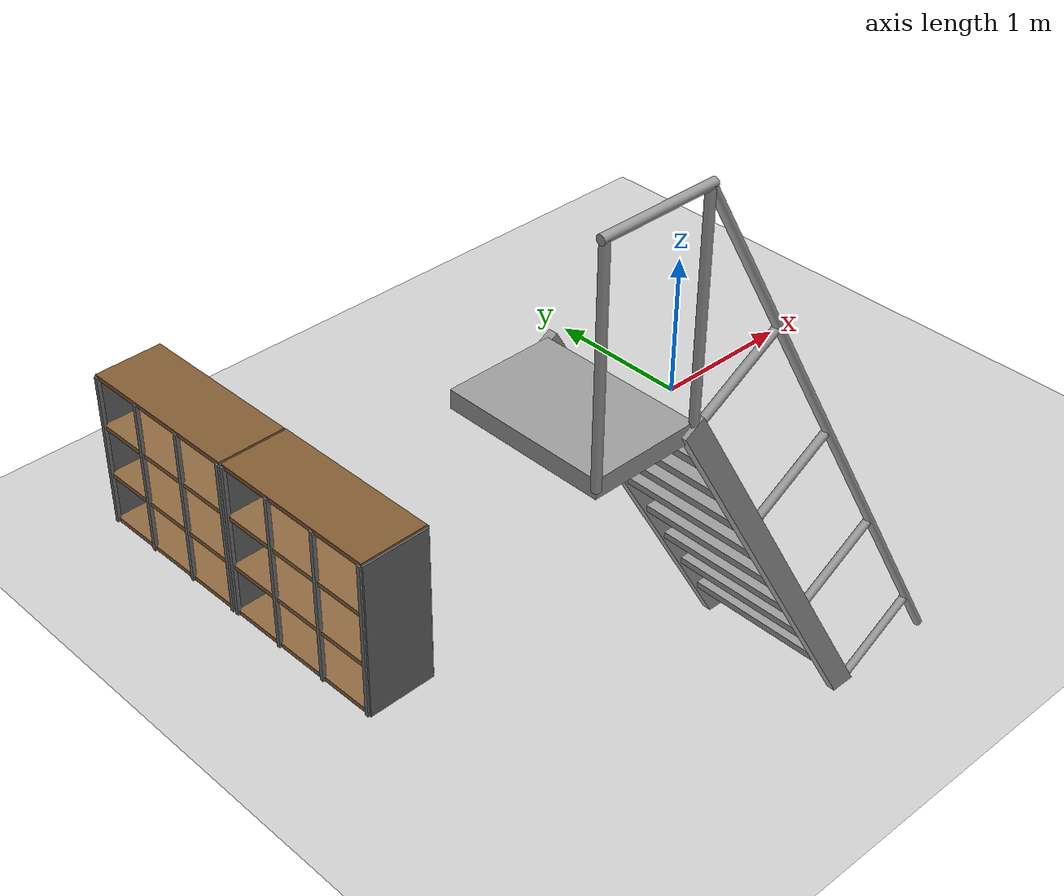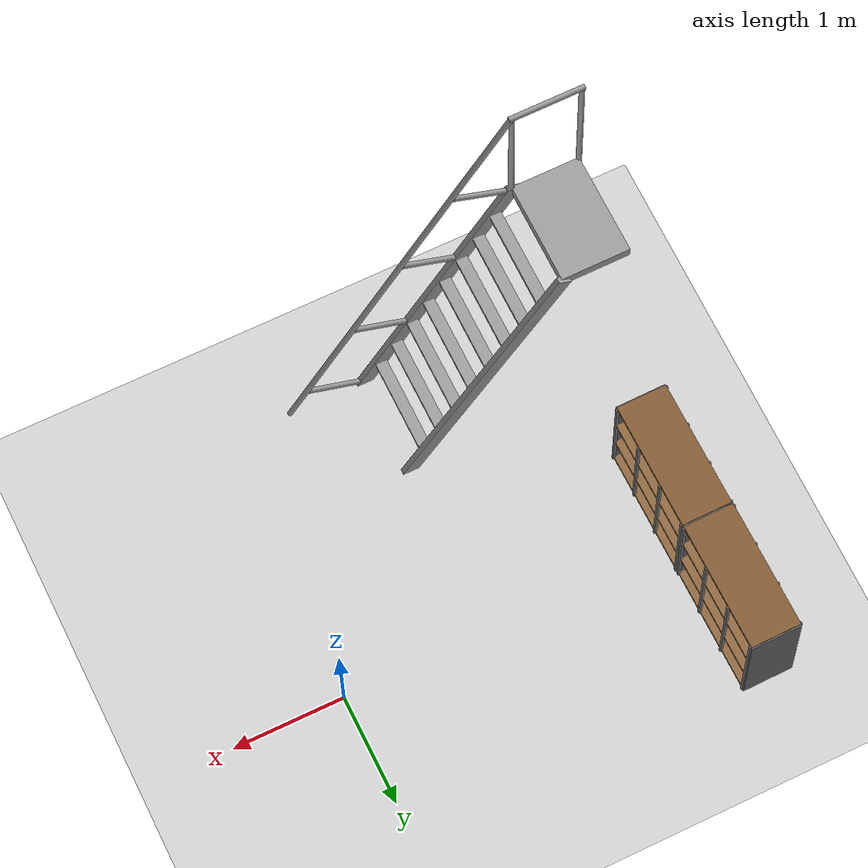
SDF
<sdf version="1.7">
 <world name="warehouse">
  <physics type="ode">
   <max_step_size>0.001</max_step_size>
   <real_time_factor>1</real_time_factor>
   <real_time_update_rate>1000</real_time_update_rate>
  </physics>
  <scene><ambient>0.5 0.5 0.5 1</ambient><background>0.7 0.7 0.7 1</background><shadows>1</shadows></scene>
  <light name="sun" type="directional">
   <pose>0 0 10 0 -0 0</pose>
   <diffuse>0.8 0.8 0.8 1</diffuse>
   <specular>0.2 0.2 0.2 1</specular>
   <attenuation>
    <range>1000</range>
    <constant>0.9</constant>
    <linear>0.01</linear>
    <quadratic>0.001</quadratic>
   </attenuation>
   <direction>-0.5 0.1 -0.9</direction>
   <spot><inner_angle>0</inner_angle><outer_angle>0</outer_angle><falloff>0</falloff></spot>
  </light>
  <model name="ground_plane">
   <static>1</static>
   <link name="link">
    <collision name="collision">
     <geometry><plane><normal>0 0 1</normal><size>100 100</size></plane></geometry>
     <surface><friction><ode><mu>100</mu><mu2>100</mu2></ode></friction></surface>
    </collision>
    <visual name="visual">
     <geometry><plane><normal>0 0 1</normal><size>100 100</size></plane></geometry>
     <material>
      <ambient>0.8 0.8 0.8 1</ambient>
      <diffuse>0.8 0.8 0.8 1</diffuse>
      <specular>0.1 0.1 0.1 1</specular>
     </material>
    </visual>
   </link>
  </model>
  <gravity>0 0 -9.8</gravity>
  <magnetic_field>6e-06 2.3e-05 -4.2e-05</magnetic_field>
  <atmosphere type="adiabatic"/>
  <audio><device>default</device></audio>
  <spherical_coordinates>
   <surface_model>EARTH_WGS84</surface_model>
   <latitude_deg>0</latitude_deg>
   <longitude_deg>0</longitude_deg>
   <elevation>0</elevation>
   <heading_deg>0</heading_deg>
  </spherical_coordinates>
  <model name="box_storage_3x3_clone_clone">
   <static>1</static>
   <link name="post_1">
    <pose>-0.5625 -0.225 0.525 0 -0 0</pose>
    <inertial><mass>0.3</mass></inertial>
    <collision name="post_1_col"><geometry><box><size>0.025 0.025 1.05</size></box></geometry></collision>
    <visual name="post_1_vis">
     <geometry><box><size>0.025 0.025 1.05</size></box></geometry>
     <material><ambient>0.45 0.45 0.45 1</ambient><diffuse>0.45 0.45 0.45 1</diffuse></material>
    </visual>
   </link>
   <link name="post_2">
    <pose>-0.1875 -0.225 0.525 0 -0 0</pose>
    <inertial><mass>0.3</mass></inertial>
    <collision name="post_2_col"><geometry><box><size>0.025 0.025 1.05</size></box></geometry></collision>
    <visual name="post_2_vis">
     <geometry><box><size>0.025 0.025 1.05</size></box></geometry>
     <material><ambient>0.45 0.45 0.45 1</ambient><diffuse>0.45 0.45 0.45 1</diffuse></material>
    </visual>
   </link>
   <link name="post_3">
    <pose>0.1875 -0.225 0.525 0 -0 0</pose>
    <inertial><mass>0.3</mass></inertial>
    <collision name="post_3_col"><geometry><box><size>0.025 0.025 1.05</size></box></geometry></collision>
    <visual name="post_3_vis">
     <geometry><box><size>0.025 0.025 1.05</size></box></geometry>
     <material><ambient>0.45 0.45 0.45 1</ambient><diffuse>0.45 0.45 0.45 1</diffuse></material>
    </visual>
   </link>
   <link name="post_4">
    <pose>0.5625 -0.225 0.525 0 -0 0</pose>
    <inertial><mass>0.3</mass></inertial>
    <collision name="post_4_col"><geometry><box><size>0.025 0.025 1.05</size></box></geometry></collision>
    <visual name="post_4_vis">
     <geometry><box><size>0.025 0.025 1.05</size></box></geometry>
     <material><ambient>0.45 0.45 0.45 1</ambient><diffuse>0.45 0.45 0.45 1</diffuse></material>
    </visual>
   </link>
   <link name="post_5">
    <pose>-0.5625 0.225 0.525 0 -0 0</pose>
    <inertial><mass>0.3</mass></inertial>
    <collision name="post_5_col"><geometry><box><size>0.025 0.025 1.05</size></box></geometry></collision>
    <visual name="post_5_vis">
     <geometry><box><size>0.025 0.025 1.05</size></box></geometry>
     <material><ambient>0.45 0.45 0.45 1</ambient><diffuse>0.45 0.45 0.45 1</diffuse></material>
    </visual>
   </link>
   <link name="post_6">
    <pose>-0.1875 0.225 0.525 0 -0 0</pose>
    <inertial><mass>0.3</mass></inertial>
    <collision name="post_6_col"><geometry><box><size>0.025 0.025 1.05</size></box></geometry></collision>
    <visual name="post_6_vis">
     <geometry><box><size>0.025 0.025 1.05</size></box></geometry>
     <material><ambient>0.45 0.45 0.45 1</ambient><diffuse>0.45 0.45 0.45 1</diffuse></material>
    </visual>
   </link>
   <link name="post_7">
    <pose>0.1875 0.225 0.525 0 -0 0</pose>
    <inertial><mass>0.3</mass></inertial>
    <collision name="post_7_col"><geometry><box><size>0.025 0.025 1.05</size></box></geometry></collision>
    <visual name="post_7_vis">
     <geometry><box><size>0.025 0.025 1.05</size></box></geometry>
     <material><ambient>0.45 0.45 0.45 1</ambient><diffuse>0.45 0.45 0.45 1</diffuse></material>
    </visual>
   </link>
   <link name="post_8">
    <pose>0.5625 0.225 0.525 0 -0 0</pose>
    <inertial><mass>0.3</mass></inertial>
    <collision name="post_8_col"><geometry><box><size>0.025 0.025 1.05</size></box></geometry></collision>
    <visual name="post_8_vis">
     <geometry><box><size>0.025 0.025 1.05</size></box></geometry>
     <material><ambient>0.45 0.45 0.45 1</ambient><diffuse>0.45 0.45 0.45 1</diffuse></material>
    </visual>
   </link>
   <link name="bottom_floor">
    <pose>0 0 0.015 0 -0 0</pose>
    <inertial><mass>5</mass></inertial>
    <collision name="bottom_floor_col"><geometry><box><size>1.15 0.45 0.03</size></box></geometry></collision>
    <visual name="bottom_floor_vis">
     <geometry><box><size>1.15 0.45 0.03</size></box></geometry>
     <material><ambient>0.55 0.4 0.25 1</ambient><diffuse>0.55 0.4 0.25 1</diffuse></material>
    </visual>
   </link>
   <link name="floor_1">
    <pose>0 0 0.35 0 -0 0</pose>
    <inertial><mass>5</mass></inertial>
    <collision name="floor_1_col"><geometry><box><size>1.15 0.45 0.03</size></box></geometry></collision>
    <visual name="floor_1_vis">
     <geometry><box><size>1.15 0.45 0.03</size></box></geometry>
     <material><ambient>0.55 0.4 0.25 1</ambient><diffuse>0.55 0.4 0.25 1</diffuse></material>
    </visual>
   </link>
   <link name="floor_2">
    <pose>0 0 0.7 0 -0 0</pose>
    <inertial><mass>5</mass></inertial>
    <collision name="floor_2_col"><geometry><box><size>1.15 0.45 0.03</size></box></geometry></collision>
    <visual name="floor_2_vis">
     <geometry><box><size>1.15 0.45 0.03</size></box></geometry>
     <material><ambient>0.55 0.4 0.25 1</ambient><diffuse>0.55 0.4 0.25 1</diffuse></material>
    </visual>
   </link>
   <link name="top_floor">
    <pose>0 0 1.05 0 -0 0</pose>
    <inertial><mass>5</mass></inertial>
    <collision name="top_floor_col"><geometry><box><size>1.15 0.45 0.03</size></box></geometry></collision>
    <visual name="top_floor_vis">
     <geometry><box><size>1.15 0.45 0.03</size></box></geometry>
     <material><ambient>0.5 0.35 0.2 1</ambient><diffuse>0.5 0.35 0.2 1</diffuse></material>
    </visual>
   </link>
   <link name="side_wall_left">
    <pose>-0.575 0 0.525 0 -0 0</pose>
    <inertial><mass>2</mass></inertial>
    <collision name="side_wall_left_col"><geometry><box><size>0.025 0.45 1.05</size></box></geometry></collision>
    <visual name="side_wall_left_vis">
     <geometry><box><size>0.025 0.45 1.05</size></box></geometry>
     <material><ambient>0.4 0.4 0.4 1</ambient><diffuse>0.4 0.4 0.4 1</diffuse></material>
    </visual>
   </link>
   <link name="side_wall_right">
    <pose>0.575 0 0.525 0 -0 0</pose>
    <inertial><mass>2</mass></inertial>
    <collision name="side_wall_right_col"><geometry><box><size>0.025 0.45 1.05</size></box></geometry></collision>
    <visual name="side_wall_right_vis">
     <geometry><box><size>0.025 0.45 1.05</size></box></geometry>
     <material><ambient>0.4 0.4 0.4 1</ambient><diffuse>0.4 0.4 0.4 1</diffuse></material>
    </visual>
   </link>
   <pose>-3.18965 0.794587 0 0 -0 1.58377</pose>
  </model>
  <model name="box_storage_3x3_clone_clone_clone">
   <static>1</static>
   <link name="post_1">
    <pose>-0.5625 -0.225 0.525 0 -0 0</pose>
    <inertial><mass>0.3</mass></inertial>
    <collision name="post_1_col"><geometry><box><size>0.025 0.025 1.05</size></box></geometry></collision>
    <visual name="post_1_vis">
     <geometry><box><size>0.025 0.025 1.05</size></box></geometry>
     <material><ambient>0.45 0.45 0.45 1</ambient><diffuse>0.45 0.45 0.45 1</diffuse></material>
    </visual>
   </link>
   <link name="post_2">
    <pose>-0.1875 -0.225 0.525 0 -0 0</pose>
    <inertial><mass>0.3</mass></inertial>
    <collision name="post_2_col"><geometry><box><size>0.025 0.025 1.05</size></box></geometry></collision>
    <visual name="post_2_vis">
     <geometry><box><size>0.025 0.025 1.05</size></box></geometry>
     <material><ambient>0.45 0.45 0.45 1</ambient><diffuse>0.45 0.45 0.45 1</diffuse></material>
    </visual>
   </link>
   <link name="post_3">
    <pose>0.1875 -0.225 0.525 0 -0 0</pose>
    <inertial><mass>0.3</mass></inertial>
    <collision name="post_3_col"><geometry><box><size>0.025 0.025 1.05</size></box></geometry></collision>
    <visual name="post_3_vis">
     <geometry><box><size>0.025 0.025 1.05</size></box></geometry>
     <material><ambient>0.45 0.45 0.45 1</ambient><diffuse>0.45 0.45 0.45 1</diffuse></material>
    </visual>
   </link>
   <link name="post_4">
    <pose>0.5625 -0.225 0.525 0 -0 0</pose>
    <inertial><mass>0.3</mass></inertial>
    <collision name="post_4_col"><geometry><box><size>0.025 0.025 1.05</size></box></geometry></collision>
    <visual name="post_4_vis">
     <geometry><box><size>0.025 0.025 1.05</size></box></geometry>
     <material><ambient>0.45 0.45 0.45 1</ambient><diffuse>0.45 0.45 0.45 1</diffuse></material>
    </visual>
   </link>
   <link name="post_5">
    <pose>-0.5625 0.225 0.525 0 -0 0</pose>
    <inertial><mass>0.3</mass></inertial>
    <collision name="post_5_col"><geometry><box><size>0.025 0.025 1.05</size></box></geometry></collision>
    <visual name="post_5_vis">
     <geometry><box><size>0.025 0.025 1.05</size></box></geometry>
     <material><ambient>0.45 0.45 0.45 1</ambient><diffuse>0.45 0.45 0.45 1</diffuse></material>
    </visual>
   </link>
   <link name="post_6">
    <pose>-0.1875 0.225 0.525 0 -0 0</pose>
    <inertial><mass>0.3</mass></inertial>
    <collision name="post_6_col"><geometry><box><size>0.025 0.025 1.05</size></box></geometry></collision>
    <visual name="post_6_vis">
     <geometry><box><size>0.025 0.025 1.05</size></box></geometry>
     <material><ambient>0.45 0.45 0.45 1</ambient><diffuse>0.45 0.45 0.45 1</diffuse></material>
    </visual>
   </link>
   <link name="post_7">
    <pose>0.1875 0.225 0.525 0 -0 0</pose>
    <inertial><mass>0.3</mass></inertial>
    <collision name="post_7_col"><geometry><box><size>0.025 0.025 1.05</size></box></geometry></collision>
    <visual name="post_7_vis">
     <geometry><box><size>0.025 0.025 1.05</size></box></geometry>
     <material><ambient>0.45 0.45 0.45 1</ambient><diffuse>0.45 0.45 0.45 1</diffuse></material>
    </visual>
   </link>
   <link name="post_8">
    <pose>0.5625 0.225 0.525 0 -0 0</pose>
    <inertial><mass>0.3</mass></inertial>
    <collision name="post_8_col"><geometry><box><size>0.025 0.025 1.05</size></box></geometry></collision>
    <visual name="post_8_vis">
     <geometry><box><size>0.025 0.025 1.05</size></box></geometry>
     <material><ambient>0.45 0.45 0.45 1</ambient><diffuse>0.45 0.45 0.45 1</diffuse></material>
    </visual>
   </link>
   <link name="bottom_floor">
    <pose>0 0 0.015 0 -0 0</pose>
    <inertial><mass>5</mass></inertial>
    <collision name="bottom_floor_col"><geometry><box><size>1.15 0.45 0.03</size></box></geometry></collision>
    <visual name="bottom_floor_vis">
     <geometry><box><size>1.15 0.45 0.03</size></box></geometry>
     <material><ambient>0.55 0.4 0.25 1</ambient><diffuse>0.55 0.4 0.25 1</diffuse></material>
    </visual>
   </link>
   <link name="floor_1">
    <pose>0 0 0.35 0 -0 0</pose>
    <inertial><mass>5</mass></inertial>
    <collision name="floor_1_col"><geometry><box><size>1.15 0.45 0.03</size></box></geometry></collision>
    <visual name="floor_1_vis">
     <geometry><box><size>1.15 0.45 0.03</size></box></geometry>
     <material><ambient>0.55 0.4 0.25 1</ambient><diffuse>0.55 0.4 0.25 1</diffuse></material>
    </visual>
   </link>
   <link name="floor_2">
    <pose>0 0 0.7 0 -0 0</pose>
    <inertial><mass>5</mass></inertial>
    <collision name="floor_2_col"><geometry><box><size>1.15 0.45 0.03</size></box></geometry></collision>
    <visual name="floor_2_vis">
     <geometry><box><size>1.15 0.45 0.03</size></box></geometry>
     <material><ambient>0.55 0.4 0.25 1</ambient><diffuse>0.55 0.4 0.25 1</diffuse></material>
    </visual>
   </link>
   <link name="top_floor">
    <pose>0 0 1.05 0 -0 0</pose>
    <inertial><mass>5</mass></inertial>
    <collision name="top_floor_col"><geometry><box><size>1.15 0.45 0.03</size></box></geometry></collision>
    <visual name="top_floor_vis">
     <geometry><box><size>1.15 0.45 0.03</size></box></geometry>
     <material><ambient>0.5 0.35 0.2 1</ambient><diffuse>0.5 0.35 0.2 1</diffuse></material>
    </visual>
   </link>
   <link name="side_wall_left">
    <pose>-0.575 0 0.525 0 -0 0</pose>
    <inertial><mass>2</mass></inertial>
    <collision name="side_wall_left_col"><geometry><box><size>0.025 0.45 1.05</size></box></geometry></collision>
    <visual name="side_wall_left_vis">
     <geometry><box><size>0.025 0.45 1.05</size></box></geometry>
     <material><ambient>0.4 0.4 0.4 1</ambient><diffuse>0.4 0.4 0.4 1</diffuse></material>
    </visual>
   </link>
   <link name="side_wall_right">
    <pose>0.575 0 0.525 0 -0 0</pose>
    <inertial><mass>2</mass></inertial>
    <collision name="side_wall_right_col"><geometry><box><size>0.025 0.45 1.05</size></box></geometry></collision>
    <visual name="side_wall_right_vis">
     <geometry><box><size>0.025 0.45 1.05</size></box></geometry>
     <material><ambient>0.4 0.4 0.4 1</ambient><diffuse>0.4 0.4 0.4 1</diffuse></material>
    </visual>
   </link>
   <pose>-3.17224 -0.371307 0 0 -0 1.58377</pose>
  </model>
  <model name="ladder_60deg_1rails">
   <static>1</static>
   <link name="step0">
    <pose>0 0.15396 0.266667 0 -0 0</pose>
    <inertial>
     <mass>9.75482</mass>
     <inertia>
      <ixx>0.00957124</ixx>
      <iyy>0.65963</iyy>
      <izz>0.666842</izz>
      <ixy>0</ixy>
      <ixz>0</ixz>
      <iyz>0</iyz>
     </inertia>
    </inertial>
    <collision name="collision"><geometry><box><size>0.9 0.1016 0.0381</size></box></geometry></collision>
    <visual name="visual">
     <geometry><box><size>0.9 0.1016 0.0381</size></box></geometry>
     <material>
      <script><uri>file://media/materials/scripts/gazebo.material</uri><name>Gazebo/Grey</name></script>
     </material>
    </visual>
   </link>
   <link name="step1">
    <pose>0 0.30792 0.533333 0 -0 0</pose>
    <inertial>
     <mass>9.75482</mass>
     <inertia>
      <ixx>0.00957124</ixx>
      <iyy>0.65963</iyy>
      <izz>0.666842</izz>
      <ixy>0</ixy>
      <ixz>0</ixz>
      <iyz>0</iyz>
     </inertia>
    </inertial>
    <collision name="collision"><geometry><box><size>0.9 0.1016 0.0381</size></box></geometry></collision>
    <visual name="visual">
     <geometry><box><size>0.9 0.1016 0.0381</size></box></geometry>
     <material>
      <script><uri>file://media/materials/scripts/gazebo.material</uri><name>Gazebo/Grey</name></script>
     </material>
    </visual>
   </link>
   <link name="step2">
    <pose>0 0.46188 0.8 0 -0 0</pose>
    <inertial>
     <mass>9.75482</mass>
     <inertia>
      <ixx>0.00957124</ixx>
      <iyy>0.65963</iyy>
      <izz>0.666842</izz>
      <ixy>0</ixy>
      <ixz>0</ixz>
      <iyz>0</iyz>
     </inertia>
    </inertial>
    <collision name="collision"><geometry><box><size>0.9 0.1016 0.0381</size></box></geometry></collision>
    <visual name="visual">
     <geometry><box><size>0.9 0.1016 0.0381</size></box></geometry>
     <material>
      <script><uri>file://media/materials/scripts/gazebo.material</uri><name>Gazebo/Grey</name></script>
     </material>
    </visual>
   </link>
   <link name="step3">
    <pose>0 0.61584 1.06667 0 -0 0</pose>
    <inertial>
     <mass>9.75482</mass>
     <inertia>
      <ixx>0.00957124</ixx>
      <iyy>0.65963</iyy>
      <izz>0.666842</izz>
      <ixy>0</ixy>
      <ixz>0</ixz>
      <iyz>0</iyz>
     </inertia>
    </inertial>
    <collision name="collision"><geometry><box><size>0.9 0.1016 0.0381</size></box></geometry></collision>
    <visual name="visual">
     <geometry><box><size>0.9 0.1016 0.0381</size></box></geometry>
     <material>
      <script><uri>file://media/materials/scripts/gazebo.material</uri><name>Gazebo/Grey</name></script>
     </material>
    </visual>
   </link>
   <link name="step4">
    <pose>0 0.7698 1.33333 0 -0 0</pose>
    <inertial>
     <mass>9.75482</mass>
     <inertia>
      <ixx>0.00957124</ixx>
      <iyy>0.65963</iyy>
      <izz>0.666842</izz>
      <ixy>0</ixy>
      <ixz>0</ixz>
      <iyz>0</iyz>
     </inertia>
    </inertial>
    <collision name="collision"><geometry><box><size>0.9 0.1016 0.0381</size></box></geometry></collision>
    <visual name="visual">
     <geometry><box><size>0.9 0.1016 0.0381</size></box></geometry>
     <material>
      <script><uri>file://media/materials/scripts/gazebo.material</uri><name>Gazebo/Grey</name></script>
     </material>
    </visual>
   </link>
   <link name="step5">
    <pose>0 0.92376 1.6 0 -0 0</pose>
    <inertial>
     <mass>9.75482</mass>
     <inertia>
      <ixx>0.00957124</ixx>
      <iyy>0.65963</iyy>
      <izz>0.666842</izz>
      <ixy>0</ixy>
      <ixz>0</ixz>
      <iyz>0</iyz>
     </inertia>
    </inertial>
    <collision name="collision"><geometry><box><size>0.9 0.1016 0.0381</size></box></geometry></collision>
    <visual name="visual">
     <geometry><box><size>0.9 0.1016 0.0381</size></box></geometry>
     <material>
      <script><uri>file://media/materials/scripts/gazebo.material</uri><name>Gazebo/Grey</name></script>
     </material>
    </visual>
   </link>
   <link name="step6">
    <pose>0 1.07772 1.86667 0 -0 0</pose>
    <inertial>
     <mass>9.75482</mass>
     <inertia>
      <ixx>0.00957124</ixx>
      <iyy>0.65963</iyy>
      <izz>0.666842</izz>
      <ixy>0</ixy>
      <ixz>0</ixz>
      <iyz>0</iyz>
     </inertia>
    </inertial>
    <collision name="collision"><geometry><box><size>0.9 0.1016 0.0381</size></box></geometry></collision>
    <visual name="visual">
     <geometry><box><size>0.9 0.1016 0.0381</size></box></geometry>
     <material>
      <script><uri>file://media/materials/scripts/gazebo.material</uri><name>Gazebo/Grey</name></script>
     </material>
    </visual>
   </link>
   <link name="step7">
    <pose>0 1.23168 2.13333 0 -0 0</pose>
    <inertial>
     <mass>9.75482</mass>
     <inertia>
      <ixx>0.00957124</ixx>
      <iyy>0.65963</iyy>
      <izz>0.666842</izz>
      <ixy>0</ixy>
      <ixz>0</ixz>
      <iyz>0</iyz>
     </inertia>
    </inertial>
    <collision name="collision"><geometry><box><size>0.9 0.1016 0.0381</size></box></geometry></collision>
    <visual name="visual">
     <geometry><box><size>0.9 0.1016 0.0381</size></box></geometry>
     <material>
      <script><uri>file://media/materials/scripts/gazebo.material</uri><name>Gazebo/Grey</name></script>
     </material>
    </visual>
   </link>
   <link name="landing">
    <pose>0 1.68564 2.4 0 -0 0</pose>
    <inertial>
     <mass>57.6072</mass>
     <inertia><ixx>1.73518</ixx><iyy>3.89545</iyy><izz>5.6167</izz><ixy>0</ixy><ixz>0</ixz><iyz>0</iyz></inertia>
    </inertial>
    <collision name="collision"><geometry><box><size>0.9 0.6 0.1016</size></box></geometry></collision>
    <visual name="visual">
     <geometry><box><size>0.9 0.6 0.1016</size></box></geometry>
     <material>
      <script><uri>file://media/materials/scripts/gazebo.material</uri><name>Gazebo/Grey</name></script>
     </material>
    </visual>
   </link>
   <link name="left_side_wall">
    <pose>-0.45 0.69282 1.2 1.0472 -0 0</pose>
    <collision name="collision"><geometry><box><size>0.0508 2.85128 0.13</size></box></geometry></collision>
    <visual name="visual">
     <geometry><box><size>0.0508 2.85128 0.13</size></box></geometry>
     <material>
      <script><uri>file://media/materials/scripts/gazebo.material</uri><name>Gazebo/Grey</name></script>
     </material>
    </visual>
   </link>
   <link name="right_side_wall">
    <pose>0.45 0.69282 1.2 1.0472 -0 0</pose>
    <collision name="collision"><geometry><box><size>0.0508 2.85128 0.13</size></box></geometry></collision>
    <visual name="visual">
     <geometry><box><size>0.0508 2.85128 0.13</size></box></geometry>
     <material>
      <script><uri>file://media/materials/scripts/gazebo.material</uri><name>Gazebo/Grey</name></script>
     </material>
    </visual>
   </link>
   <link name="left_railing_long">
    <pose>-0.45 0.34282 1.80622 -0.523599 0 0</pose>
    <collision name="collision">
     <geometry><cylinder><radius>0.02413</radius><length>4.17128</length></cylinder></geometry>
    </collision>
    <visual name="visual">
     <geometry><cylinder><radius>0.02413</radius><length>4.17128</length></cylinder></geometry>
     <material>
      <script><uri>file://media/materials/scripts/gazebo.material</uri><name>Gazebo/Grey</name></script>
     </material>
    </visual>
   </link>
   <link name="left_railing_upright0">
    <pose>-0.45 -0.274963 0.15875 1.0472 -0 0</pose>
    <collision name="collision">
     <geometry><cylinder><radius>0.02413</radius><length>0.541218</length></cylinder></geometry>
    </collision>
    <visual name="visual">
     <geometry><cylinder><radius>0.02413</radius><length>0.541218</length></cylinder></geometry>
     <material>
      <script><uri>file://media/materials/scripts/gazebo.material</uri><name>Gazebo/Grey</name></script>
     </material>
    </visual>
   </link>
   <link name="left_railing_upright1">
    <pose>-0.45 0.186917 0.95875 1.0472 -0 0</pose>
    <collision name="collision">
     <geometry><cylinder><radius>0.02413</radius><length>0.541218</length></cylinder></geometry>
    </collision>
    <visual name="visual">
     <geometry><cylinder><radius>0.02413</radius><length>0.541218</length></cylinder></geometry>
     <material>
      <script><uri>file://media/materials/scripts/gazebo.material</uri><name>Gazebo/Grey</name></script>
     </material>
    </visual>
   </link>
   <link name="left_railing_upright2">
    <pose>-0.45 0.648797 1.75875 1.0472 -0 0</pose>
    <collision name="collision">
     <geometry><cylinder><radius>0.02413</radius><length>0.541218</length></cylinder></geometry>
    </collision>
    <visual name="visual">
     <geometry><cylinder><radius>0.02413</radius><length>0.541218</length></cylinder></geometry>
     <material>
      <script><uri>file://media/materials/scripts/gazebo.material</uri><name>Gazebo/Grey</name></script>
     </material>
    </visual>
   </link>
   <link name="left_railing_upright3">
    <pose>-0.45 1.11068 2.55875 1.0472 -0 0</pose>
    <collision name="collision">
     <geometry><cylinder><radius>0.02413</radius><length>0.541218</length></cylinder></geometry>
    </collision>
    <visual name="visual">
     <geometry><cylinder><radius>0.02413</radius><length>0.541218</length></cylinder></geometry>
     <material>
      <script><uri>file://media/materials/scripts/gazebo.material</uri><name>Gazebo/Grey</name></script>
     </material>
    </visual>
   </link>
   <link name="left_railing_landing_top">
    <pose>-0.45 1.68564 3.61244 1.5708 -0 0</pose>
    <collision name="collision">
     <geometry><cylinder><radius>0.02413</radius><length>0.64826</length></cylinder></geometry>
    </collision>
    <visual name="visual">
     <geometry><cylinder><radius>0.02413</radius><length>0.64826</length></cylinder></geometry>
     <material>
      <script><uri>file://media/materials/scripts/gazebo.material</uri><name>Gazebo/Grey</name></script>
     </material>
    </visual>
   </link>
   <link name="left_railing_landing_upright_0">
    <pose>-0.45 1.38564 3.00622 0 -0 0</pose>
    <collision name="collision">
     <geometry><cylinder><radius>0.02413</radius><length>1.21244</length></cylinder></geometry>
    </collision>
    <visual name="visual">
     <geometry><cylinder><radius>0.02413</radius><length>1.21244</length></cylinder></geometry>
     <material>
      <script><uri>file://media/materials/scripts/gazebo.material</uri><name>Gazebo/Grey</name></script>
     </material>
    </visual>
   </link>
   <link name="left_railing_landing_upright_1">
    <pose>-0.45 1.98564 3.00622 0 -0 0</pose>
    <collision name="collision">
     <geometry><cylinder><radius>0.02413</radius><length>1.21244</length></cylinder></geometry>
    </collision>
    <visual name="visual">
     <geometry><cylinder><radius>0.02413</radius><length>1.21244</length></cylinder></geometry>
     <material>
      <script><uri>file://media/materials/scripts/gazebo.material</uri><name>Gazebo/Grey</name></script>
     </material>
    </visual>
   </link>
   <pose>-1.35599 -2.04639 0 0 -0 1.57389</pose>
  </model>
 </world>
</sdf>
